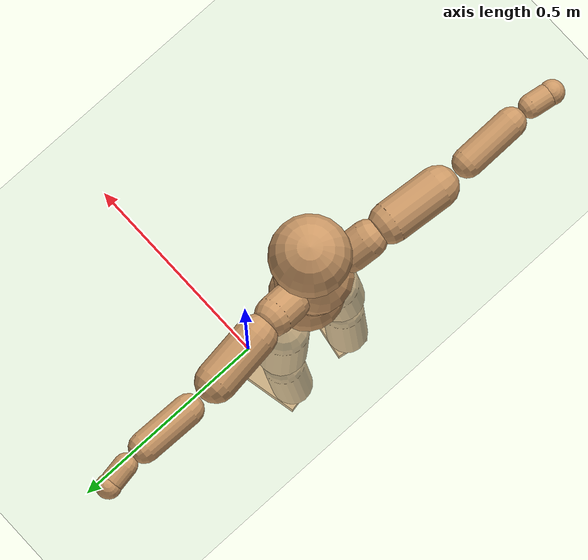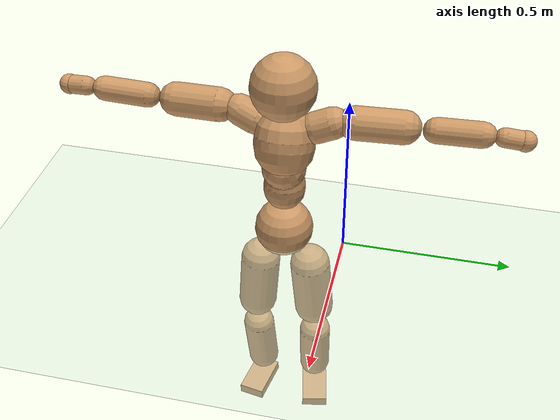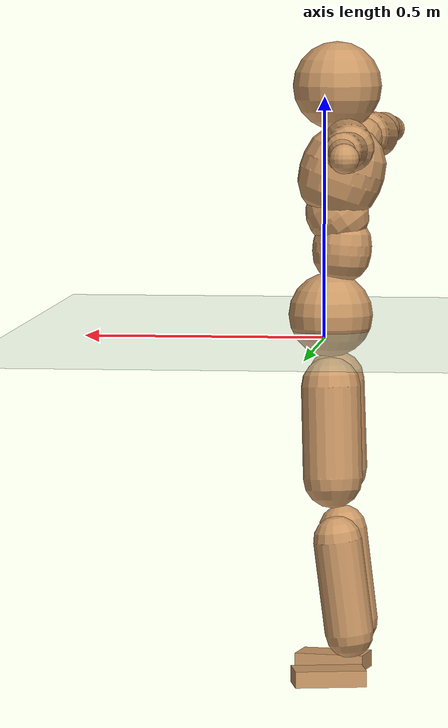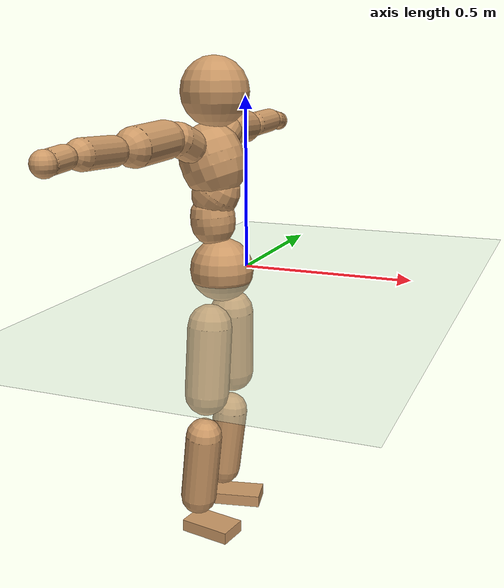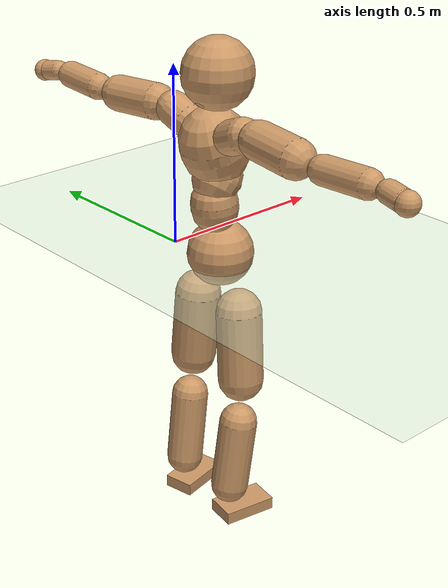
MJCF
<mujoco model="humanoid">
  <compiler coordinate="local"/>
  <default>
    <joint damping="0.0" armature="0.01" stiffness="0.0" limited="true"/>
    <geom conaffinity="1" condim="3" contype="7" margin="0.001" rgba="0.8 0.6 .4 1"/>
  </default>
  <asset>
    <texture type="skybox" builtin="gradient" rgb1=".4 .5 .6" rgb2="0 0 0" width="100" height="100"/>
    <texture builtin="flat" height="1278" mark="cross" markrgb="1 1 1" name="texgeom" random="0.01" rgb1="0.8 0.6 0.4" rgb2="0.8 0.6 0.4" type="cube" width="127"/>
    <texture builtin="checker" height="100" name="texplane" rgb1="0 0 0" rgb2="0.8 0.8 0.8" type="2d" width="100"/>
    <material name="MatPlane" reflectance="0.5" shininess="1" specular="1" texrepeat="60 60" texture="texplane"/>
    <material name="geom" texture="texgeom" texuniform="true"/>
  </asset>
  <worldbody>
    <light cutoff="100" diffuse="1 1 1" dir="-0 0 -1.3" directional="true" exponent="1" pos="0 0 1.3" specular=".1 .1 .1"/>
    <geom conaffinity="1" condim="3" name="floor" pos="0 0 0" rgba="0.8 0.9 0.8 1" size="100 100 .2" type="plane" material="MatPlane"/>
    <body name="Pelvis" pos="0.001 -0.1847 0.0325">
      <freejoint name="Pelvis"/>
      <geom type="sphere" contype="1" conaffinity="1" density="500" size="0.0895" pos="0.0000 0.0000 0.0000" name="Pelvis"/>
      <body name="L_Hip" pos="-0.005 0.0761 -0.0804">
        <joint name="L_Hip_x" type="hinge" pos="0 0 0" axis="1 0 0" stiffness="800" damping="80" armature="0.02" range="-180.0000 180.0000"/>
        <joint name="L_Hip_y" type="hinge" pos="0 0 0" axis="0 1 0" stiffness="800" damping="80" armature="0.02" range="-180.0000 180.0000"/>
        <joint name="L_Hip_z" type="hinge" pos="0 0 0" axis="0 0 1" stiffness="800" damping="80" armature="0.02" range="-180.0000 180.0000"/>
        <geom type="capsule" contype="1" conaffinity="1" density="500" fromto="-0.0019 0.0046 -0.0644 -0.0077 0.0182 -0.2574" size="0.0627" name="L_Hip"/>
        <body name="L_Knee" pos="-0.0097 0.0228 -0.3218">
          <joint name="L_Knee_x" type="hinge" pos="0 0 0" axis="1 0 0" stiffness="800" damping="80" armature="0.02" range="-180.0000 180.0000"/>
          <joint name="L_Knee_y" type="hinge" pos="0 0 0" axis="0 1 0" stiffness="800" damping="80" armature="0.02" range="-180.0000 180.0000"/>
          <joint name="L_Knee_z" type="hinge" pos="0 0 0" axis="0 0 1" stiffness="800" damping="80" armature="0.02" range="-180.0000 180.0000"/>
          <geom type="capsule" contype="1" conaffinity="1" density="500" fromto="-0.0084 -0.0014 -0.0661 -0.0335 -0.0057 -0.2646" size="0.0514" name="L_Knee"/>
          <body name="L_Ankle" pos="-0.0419 -0.0071 -0.3307">
            <joint name="L_Ankle_x" type="hinge" pos="0 0 0" axis="1 0 0" stiffness="800" damping="80" armature="0.02" range="-180.0000 180.0000"/>
            <joint name="L_Ankle_y" type="hinge" pos="0 0 0" axis="0 1 0" stiffness="800" damping="80" armature="0.02" range="-180.0000 180.0000"/>
            <joint name="L_Ankle_z" type="hinge" pos="0 0 0" axis="0 0 1" stiffness="800" damping="80" armature="0.02" range="-180.0000 180.0000"/>
            <geom type="box" contype="1" conaffinity="1" density="500" pos="0.0513 0.0106 -0.0249" size="0.0754 0.0427 0.0174" quat="0.9948 0.0000 0.0000 0.1018" name="L_Ankle"/>
            <body name="L_Toe" pos="0.1025 0.0212 -0.0499">
              <joint name="L_Toe_x" type="hinge" pos="0 0 0" axis="1 0 0" stiffness="500" damping="50" armature="0.02" range="-180.0000 180.0000"/>
              <joint name="L_Toe_y" type="hinge" pos="0 0 0" axis="0 1 0" stiffness="500" damping="50" armature="0.02" range="-180.0000 180.0000"/>
              <joint name="L_Toe_z" type="hinge" pos="0 0 0" axis="0 0 1" stiffness="500" damping="50" armature="0.02" range="-180.0000 180.0000"/>
              <geom type="box" contype="1" conaffinity="1" density="500" pos="0.0000 0.0000 0.0248" size="0.0009 0.0022 0.0009" quat="0.9940 0.0000 0.0000 0.1090" name="L_Toe"/>
            </body>
          </body>
        </body>
      </body>
      <body name="R_Hip" pos="-0.002 -0.0732 -0.0799">
        <joint name="R_Hip_x" type="hinge" pos="0 0 0" axis="1 0 0" stiffness="800" damping="80" armature="0.02" range="-180.0000 180.0000"/>
        <joint name="R_Hip_y" type="hinge" pos="0 0 0" axis="0 1 0" stiffness="800" damping="80" armature="0.02" range="-180.0000 180.0000"/>
        <joint name="R_Hip_z" type="hinge" pos="0 0 0" axis="0 0 1" stiffness="800" damping="80" armature="0.02" range="-180.0000 180.0000"/>
        <geom type="capsule" contype="1" conaffinity="1" density="500" fromto="-0.0018 -0.0058 -0.0650 -0.0072 -0.0233 -0.2599" size="0.0622" name="R_Hip"/>
        <body name="R_Knee" pos="-0.009 -0.0291 -0.3249">
          <joint name="R_Knee_x" type="hinge" pos="0 0 0" axis="1 0 0" stiffness="800" damping="80" armature="0.02" range="-180.0000 180.0000"/>
          <joint name="R_Knee_y" type="hinge" pos="0 0 0" axis="0 1 0" stiffness="800" damping="80" armature="0.02" range="-180.0000 180.0000"/>
          <joint name="R_Knee_z" type="hinge" pos="0 0 0" axis="0 0 1" stiffness="800" damping="80" armature="0.02" range="-180.0000 180.0000"/>
          <geom type="capsule" contype="1" conaffinity="1" density="500" fromto="-0.0082 0.0019 -0.0661 -0.0327 0.0074 -0.2645" size="0.0519" name="R_Knee"/>
          <body name="R_Ankle" pos="-0.0409 0.0093 -0.3306">
            <joint name="R_Ankle_x" type="hinge" pos="0 0 0" axis="1 0 0" stiffness="800" damping="80" armature="0.02" range="-180.0000 180.0000"/>
            <joint name="R_Ankle_y" type="hinge" pos="0 0 0" axis="0 1 0" stiffness="800" damping="80" armature="0.02" range="-180.0000 180.0000"/>
            <joint name="R_Ankle_z" type="hinge" pos="0 0 0" axis="0 0 1" stiffness="800" damping="80" armature="0.02" range="-180.0000 180.0000"/>
            <geom type="box" contype="1" conaffinity="1" density="500" pos="0.0526 -0.0090 -0.0207" size="0.0748 0.0422 0.0175" quat="0.9964 0.0000 0.0000 -0.0844" name="R_Ankle"/>
            <body name="R_Toe" pos="0.1052 -0.018 -0.0414">
              <joint name="R_Toe_x" type="hinge" pos="0 0 0" axis="1 0 0" stiffness="500" damping="50" armature="0.02" range="-180.0000 180.0000"/>
              <joint name="R_Toe_y" type="hinge" pos="0 0 0" axis="0 1 0" stiffness="500" damping="50" armature="0.02" range="-180.0000 180.0000"/>
              <joint name="R_Toe_z" type="hinge" pos="0 0 0" axis="0 0 1" stiffness="500" damping="50" armature="0.02" range="-180.0000 180.0000"/>
              <geom type="box" contype="1" conaffinity="1" density="500" pos="0.0000 0.0000 0.0235" size="0.0008 0.0021 0.001" quat="0.9973 0.0000 0.0000 -0.0738" name="R_Toe"/>
            </body>
          </body>
        </body>
      </body>
      <body name="Torso" pos="-0.0194 -0.0022 0.0882">
        <joint name="Torso_x" type="hinge" pos="0 0 0" axis="1 0 0" stiffness="1000" damping="100" armature="0.02" range="-180.0000 180.0000"/>
        <joint name="Torso_y" type="hinge" pos="0 0 0" axis="0 1 0" stiffness="1000" damping="100" armature="0.02" range="-180.0000 180.0000"/>
        <joint name="Torso_z" type="hinge" pos="0 0 0" axis="0 0 1" stiffness="1000" damping="100" armature="0.02" range="-180.0000 180.0000"/>
        <geom type="capsule" contype="1" conaffinity="1" density="500" fromto="-0.0051 0.0000 0.0626 -0.0034 0.0000 0.0417" size="0.0626" name="Torso"/>
        <body name="Spine" pos="-0.0086 0.0001 0.1043">
          <joint name="Spine_x" type="hinge" pos="0 0 0" axis="1 0 0" stiffness="1000" damping="100" armature="0.02" range="-180.0000 180.0000"/>
          <joint name="Spine_y" type="hinge" pos="0 0 0" axis="0 1 0" stiffness="1000" damping="100" armature="0.02" range="-180.0000 180.0000"/>
          <joint name="Spine_z" type="hinge" pos="0 0 0" axis="0 0 1" stiffness="1000" damping="100" armature="0.02" range="-180.0000 180.0000"/>
          <geom type="capsule" contype="1" conaffinity="1" density="500" fromto="0.0174 0.0016 0.0243 0.0116 0.0011 0.0162" size="0.0652" name="Spine"/>
          <body name="Chest" pos="0.0291 0.0027 0.0405">
            <joint name="Chest_x" type="hinge" pos="0 0 0" axis="1 0 0" stiffness="1000" damping="100" armature="0.02" range="-180.0000 180.0000"/>
            <joint name="Chest_y" type="hinge" pos="0 0 0" axis="0 1 0" stiffness="1000" damping="100" armature="0.02" range="-180.0000 180.0000"/>
            <joint name="Chest_z" type="hinge" pos="0 0 0" axis="0 0 1" stiffness="1000" damping="100" armature="0.02" range="-180.0000 180.0000"/>
            <geom type="capsule" contype="1" conaffinity="1" density="500" fromto="-0.0290 -0.0003 0.0826 -0.0193 -0.0002 0.0551" size="0.0895" name="Chest"/>
            <body name="Neck" pos="-0.0601 -0.0007 0.1952">
              <joint name="Neck_x" type="hinge" pos="0 0 0" axis="1 0 0" stiffness="500" damping="50" armature="0.02" range="-180.0000 180.0000"/>
              <joint name="Neck_y" type="hinge" pos="0 0 0" axis="0 1 0" stiffness="500" damping="50" armature="0.02" range="-180.0000 180.0000"/>
              <joint name="Neck_z" type="hinge" pos="0 0 0" axis="0 0 1" stiffness="500" damping="50" armature="0.02" range="-180.0000 180.0000"/>
              <geom type="capsule" contype="1" conaffinity="1" density="500" fromto="0.0092 0.0003 0.0111 0.0367 0.0012 0.0445" size="0.0371" name="Neck"/>
              <body name="Head" pos="0.0459 0.0015 0.0556">
                <joint name="Head_x" type="hinge" pos="0 0 0" axis="1 0 0" stiffness="500" damping="50" armature="0.02" range="-180.0000 180.0000"/>
                <joint name="Head_y" type="hinge" pos="0 0 0" axis="0 1 0" stiffness="500" damping="50" armature="0.02" range="-180.0000 180.0000"/>
                <joint name="Head_z" type="hinge" pos="0 0 0" axis="0 0 1" stiffness="500" damping="50" armature="0.02" range="-180.0000 180.0000"/>
                <geom type="sphere" contype="1" conaffinity="1" density="500" size="0.0941" pos="0.0000 0.0000 0.0000" name="Head"/>
              </body>
            </body>
            <body name="L_Thorax" pos="-0.0392 0.0701 0.1095">
              <joint name="L_Thorax_x" type="hinge" pos="0 0 0" axis="1 0 0" stiffness="500" damping="50" armature="0.02" range="-180.0000 180.0000"/>
              <joint name="L_Thorax_y" type="hinge" pos="0 0 0" axis="0 1 0" stiffness="500" damping="50" armature="0.02" range="-180.0000 180.0000"/>
              <joint name="L_Thorax_z" type="hinge" pos="0 0 0" axis="0 0 1" stiffness="500" damping="50" armature="0.02" range="-180.0000 180.0000"/>
              <geom type="capsule" contype="1" conaffinity="1" density="500" fromto="-0.0011 0.0161 0.0067 -0.0045 0.0643 0.0269" size="0.0465" name="L_Thorax"/>
              <body name="L_Shoulder" pos="-0.0056 0.0804 0.0336">
                <joint name="L_Shoulder_x" type="hinge" pos="0 0 0" axis="1 0 0" stiffness="500" damping="50" armature="0.02" range="-720.0000 720.0000"/>
                <joint name="L_Shoulder_y" type="hinge" pos="0 0 0" axis="0 1 0" stiffness="500" damping="50" armature="0.02" range="-720.0000 720.0000"/>
                <joint name="L_Shoulder_z" type="hinge" pos="0 0 0" axis="0 0 1" stiffness="500" damping="50" armature="0.02" range="-720.0000 720.0000"/>
                <geom type="capsule" contype="1" conaffinity="1" density="500" fromto="-0.0053 0.0448 -0.0018 -0.0214 0.1793 -0.0072" size="0.049" name="L_Shoulder"/>
                <body name="L_Elbow" pos="-0.0267 0.2242 -0.0091">
                  <joint name="L_Elbow_x" type="hinge" pos="0 0 0" axis="1 0 0" stiffness="500" damping="50" armature="0.02" range="-720.0000 720.0000"/>
                  <joint name="L_Elbow_y" type="hinge" pos="0 0 0" axis="0 1 0" stiffness="500" damping="50" armature="0.02" range="-720.0000 720.0000"/>
                  <joint name="L_Elbow_z" type="hinge" pos="0 0 0" axis="0 0 1" stiffness="500" damping="50" armature="0.02" range="-720.0000 720.0000"/>
                  <geom type="capsule" contype="1" conaffinity="1" density="500" fromto="0.0006 0.0425 0.0017 0.0024 0.1700 0.0070" size="0.0369" name="L_Elbow"/>
                  <body name="L_Wrist" pos="0.003 0.2125 0.0087">
                    <joint name="L_Wrist_x" type="hinge" pos="0 0 0" axis="1 0 0" stiffness="300" damping="30" armature="0.02" range="-180.0000 180.0000"/>
                    <joint name="L_Wrist_y" type="hinge" pos="0 0 0" axis="0 1 0" stiffness="300" damping="30" armature="0.02" range="-180.0000 180.0000"/>
                    <joint name="L_Wrist_z" type="hinge" pos="0 0 0" axis="0 0 1" stiffness="300" damping="30" armature="0.02" range="-180.0000 180.0000"/>
                    <geom type="capsule" contype="1" conaffinity="1" density="500" fromto="-0.0021 0.0145 -0.0023 -0.0084 0.0582 -0.0093" size="0.0276" name="L_Wrist"/>
                    <body name="L_Hand" pos="-0.0105 0.0727 -0.0116">
                      <joint name="L_Hand_x" type="hinge" pos="0 0 0" axis="1 0 0" stiffness="300" damping="30" armature="0.02" range="-180.0000 180.0000"/>
                      <joint name="L_Hand_y" type="hinge" pos="0 0 0" axis="0 1 0" stiffness="300" damping="30" armature="0.02" range="-180.0000 180.0000"/>
                      <joint name="L_Hand_z" type="hinge" pos="0 0 0" axis="0 0 1" stiffness="300" damping="30" armature="0.02" range="-180.0000 180.0000"/>
                      <geom type="sphere" contype="1" conaffinity="1" density="500" size="0.0298" pos="0.0000 0.0000 0.0000" name="L_Hand"/>
                    </body>
                  </body>
                </body>
              </body>
            </body>
            <body name="R_Thorax" pos="-0.0457 -0.071 0.1085">
              <joint name="R_Thorax_x" type="hinge" pos="0 0 0" axis="1 0 0" stiffness="500" damping="50" armature="0.02" range="-180.0000 180.0000"/>
              <joint name="R_Thorax_y" type="hinge" pos="0 0 0" axis="0 1 0" stiffness="500" damping="50" armature="0.02" range="-180.0000 180.0000"/>
              <joint name="R_Thorax_z" type="hinge" pos="0 0 0" axis="0 0 1" stiffness="500" damping="50" armature="0.02" range="-180.0000 180.0000"/>
              <geom type="capsule" contype="1" conaffinity="1" density="500" fromto="-0.0024 -0.0164 0.0067 -0.0095 -0.0658 0.0268" size="0.0455" name="R_Thorax"/>
              <body name="R_Shoulder" pos="-0.0118 -0.0822 0.0335">
                <joint name="R_Shoulder_x" type="hinge" pos="0 0 0" axis="1 0 0" stiffness="500" damping="50" armature="0.02" range="-720.0000 720.0000"/>
                <joint name="R_Shoulder_y" type="hinge" pos="0 0 0" axis="0 1 0" stiffness="500" damping="50" armature="0.02" range="-720.0000 720.0000"/>
                <joint name="R_Shoulder_z" type="hinge" pos="0 0 0" axis="0 0 1" stiffness="500" damping="50" armature="0.02" range="-720.0000 720.0000"/>
                <geom type="capsule" contype="1" conaffinity="1" density="500" fromto="-0.0037 -0.0446 -0.0023 -0.0149 -0.1783 -0.0093" size="0.05" name="R_Shoulder"/>
                <body name="R_Elbow" pos="-0.0187 -0.2229 -0.0116">
                  <joint name="R_Elbow_x" type="hinge" pos="0 0 0" axis="1 0 0" stiffness="500" damping="50" armature="0.02" range="-720.0000 720.0000"/>
                  <joint name="R_Elbow_y" type="hinge" pos="0 0 0" axis="0 1 0" stiffness="500" damping="50" armature="0.02" range="-720.0000 720.0000"/>
                  <joint name="R_Elbow_z" type="hinge" pos="0 0 0" axis="0 0 1" stiffness="500" damping="50" armature="0.02" range="-720.0000 720.0000"/>
                  <geom type="capsule" contype="1" conaffinity="1" density="500" fromto="0.0003 -0.0439 0.0018 0.0013 -0.1754 0.0070" size="0.0365" name="R_Elbow"/>
                  <body name="R_Wrist" pos="0.0016 -0.2193 0.0088">
                    <joint name="R_Wrist_x" type="hinge" pos="0 0 0" axis="1 0 0" stiffness="300" damping="30" armature="0.02" range="-180.0000 180.0000"/>
                    <joint name="R_Wrist_y" type="hinge" pos="0 0 0" axis="0 1 0" stiffness="300" damping="30" armature="0.02" range="-180.0000 180.0000"/>
                    <joint name="R_Wrist_z" type="hinge" pos="0 0 0" axis="0 0 1" stiffness="300" damping="30" armature="0.02" range="-180.0000 180.0000"/>
                    <geom type="capsule" contype="1" conaffinity="1" density="500" fromto="-0.0021 -0.0147 -0.0017 -0.0083 -0.0589 -0.0069" size="0.0283" name="R_Wrist"/>
                    <body name="R_Hand" pos="-0.0104 -0.0736 -0.0087">
                      <joint name="R_Hand_x" type="hinge" pos="0 0 0" axis="1 0 0" stiffness="300" damping="30" armature="0.02" range="-180.0000 180.0000"/>
                      <joint name="R_Hand_y" type="hinge" pos="0 0 0" axis="0 1 0" stiffness="300" damping="30" armature="0.02" range="-180.0000 180.0000"/>
                      <joint name="R_Hand_z" type="hinge" pos="0 0 0" axis="0 0 1" stiffness="300" damping="30" armature="0.02" range="-180.0000 180.0000"/>
                      <geom type="sphere" contype="1" conaffinity="1" density="500" size="0.0299" pos="0.0000 0.0000 0.0000" name="R_Hand"/>
                    </body>
                  </body>
                </body>
              </body>
            </body>
          </body>
        </body>
      </body>
    </body>
  </worldbody>
  <actuator>
    <motor name="L_Hip_x" joint="L_Hip_x" gear="500"/>
    <motor name="L_Hip_y" joint="L_Hip_y" gear="500"/>
    <motor name="L_Hip_z" joint="L_Hip_z" gear="500"/>
    <motor name="L_Knee_x" joint="L_Knee_x" gear="500"/>
    <motor name="L_Knee_y" joint="L_Knee_y" gear="500"/>
    <motor name="L_Knee_z" joint="L_Knee_z" gear="500"/>
    <motor name="L_Ankle_x" joint="L_Ankle_x" gear="500"/>
    <motor name="L_Ankle_y" joint="L_Ankle_y" gear="500"/>
    <motor name="L_Ankle_z" joint="L_Ankle_z" gear="500"/>
    <motor name="L_Toe_x" joint="L_Toe_x" gear="500"/>
    <motor name="L_Toe_y" joint="L_Toe_y" gear="500"/>
    <motor name="L_Toe_z" joint="L_Toe_z" gear="500"/>
    <motor name="R_Hip_x" joint="R_Hip_x" gear="500"/>
    <motor name="R_Hip_y" joint="R_Hip_y" gear="500"/>
    <motor name="R_Hip_z" joint="R_Hip_z" gear="500"/>
    <motor name="R_Knee_x" joint="R_Knee_x" gear="500"/>
    <motor name="R_Knee_y" joint="R_Knee_y" gear="500"/>
    <motor name="R_Knee_z" joint="R_Knee_z" gear="500"/>
    <motor name="R_Ankle_x" joint="R_Ankle_x" gear="500"/>
    <motor name="R_Ankle_y" joint="R_Ankle_y" gear="500"/>
    <motor name="R_Ankle_z" joint="R_Ankle_z" gear="500"/>
    <motor name="R_Toe_x" joint="R_Toe_x" gear="500"/>
    <motor name="R_Toe_y" joint="R_Toe_y" gear="500"/>
    <motor name="R_Toe_z" joint="R_Toe_z" gear="500"/>
    <motor name="Torso_x" joint="Torso_x" gear="500"/>
    <motor name="Torso_y" joint="Torso_y" gear="500"/>
    <motor name="Torso_z" joint="Torso_z" gear="500"/>
    <motor name="Spine_x" joint="Spine_x" gear="500"/>
    <motor name="Spine_y" joint="Spine_y" gear="500"/>
    <motor name="Spine_z" joint="Spine_z" gear="500"/>
    <motor name="Chest_x" joint="Chest_x" gear="500"/>
    <motor name="Chest_y" joint="Chest_y" gear="500"/>
    <motor name="Chest_z" joint="Chest_z" gear="500"/>
    <motor name="Neck_x" joint="Neck_x" gear="500"/>
    <motor name="Neck_y" joint="Neck_y" gear="500"/>
    <motor name="Neck_z" joint="Neck_z" gear="500"/>
    <motor name="Head_x" joint="Head_x" gear="500"/>
    <motor name="Head_y" joint="Head_y" gear="500"/>
    <motor name="Head_z" joint="Head_z" gear="500"/>
    <motor name="L_Thorax_x" joint="L_Thorax_x" gear="500"/>
    <motor name="L_Thorax_y" joint="L_Thorax_y" gear="500"/>
    <motor name="L_Thorax_z" joint="L_Thorax_z" gear="500"/>
    <motor name="L_Shoulder_x" joint="L_Shoulder_x" gear="500"/>
    <motor name="L_Shoulder_y" joint="L_Shoulder_y" gear="500"/>
    <motor name="L_Shoulder_z" joint="L_Shoulder_z" gear="500"/>
    <motor name="L_Elbow_x" joint="L_Elbow_x" gear="500"/>
    <motor name="L_Elbow_y" joint="L_Elbow_y" gear="500"/>
    <motor name="L_Elbow_z" joint="L_Elbow_z" gear="500"/>
    <motor name="L_Wrist_x" joint="L_Wrist_x" gear="500"/>
    <motor name="L_Wrist_y" joint="L_Wrist_y" gear="500"/>
    <motor name="L_Wrist_z" joint="L_Wrist_z" gear="500"/>
    <motor name="L_Hand_x" joint="L_Hand_x" gear="500"/>
    <motor name="L_Hand_y" joint="L_Hand_y" gear="500"/>
    <motor name="L_Hand_z" joint="L_Hand_z" gear="500"/>
    <motor name="R_Thorax_x" joint="R_Thorax_x" gear="500"/>
    <motor name="R_Thorax_y" joint="R_Thorax_y" gear="500"/>
    <motor name="R_Thorax_z" joint="R_Thorax_z" gear="500"/>
    <motor name="R_Shoulder_x" joint="R_Shoulder_x" gear="500"/>
    <motor name="R_Shoulder_y" joint="R_Shoulder_y" gear="500"/>
    <motor name="R_Shoulder_z" joint="R_Shoulder_z" gear="500"/>
    <motor name="R_Elbow_x" joint="R_Elbow_x" gear="500"/>
    <motor name="R_Elbow_y" joint="R_Elbow_y" gear="500"/>
    <motor name="R_Elbow_z" joint="R_Elbow_z" gear="500"/>
    <motor name="R_Wrist_x" joint="R_Wrist_x" gear="500"/>
    <motor name="R_Wrist_y" joint="R_Wrist_y" gear="500"/>
    <motor name="R_Wrist_z" joint="R_Wrist_z" gear="500"/>
    <motor name="R_Hand_x" joint="R_Hand_x" gear="500"/>
    <motor name="R_Hand_y" joint="R_Hand_y" gear="500"/>
    <motor name="R_Hand_z" joint="R_Hand_z" gear="500"/>
  </actuator>
  <contact>
    <exclude body1="Torso" body2="Chest"/>
    <exclude body1="Head" body2="Chest"/>
    <exclude body1="R_Knee" body2="R_Toe"/>
    <exclude body1="R_Knee" body2="L_Ankle"/>
    <exclude body1="R_Knee" body2="L_Toe"/>
    <exclude body1="L_Knee" body2="L_Toe"/>
    <exclude body1="L_Knee" body2="R_Ankle"/>
    <exclude body1="L_Knee" body2="R_Toe"/>
    <exclude body1="L_Shoulder" body2="Chest"/>
    <exclude body1="R_Shoulder" body2="Chest"/>
  </contact>
  <sensor/>
  <size njmax="700" nconmax="700"/>
</mujoco>
